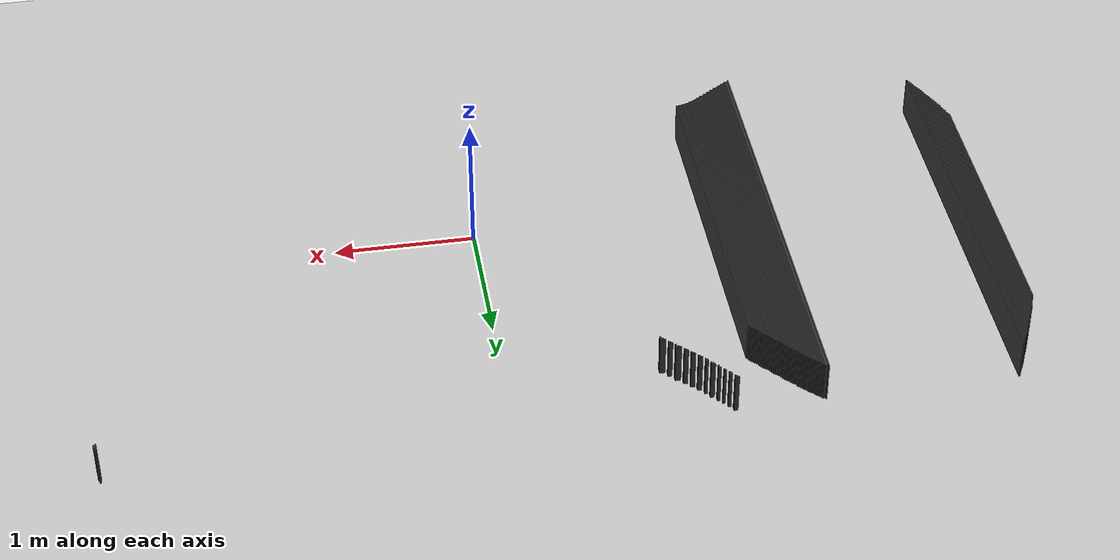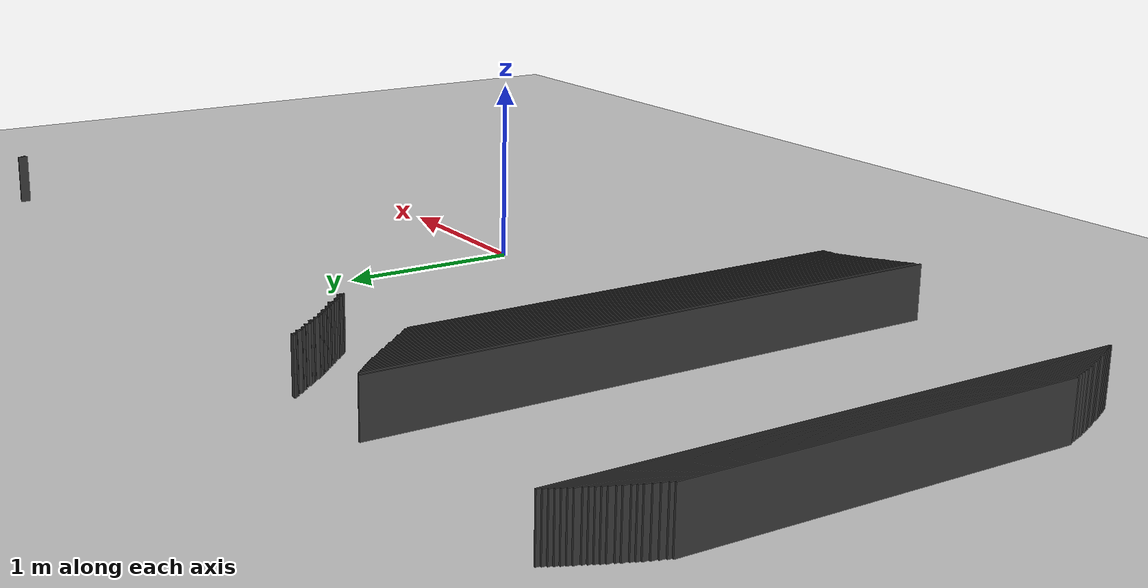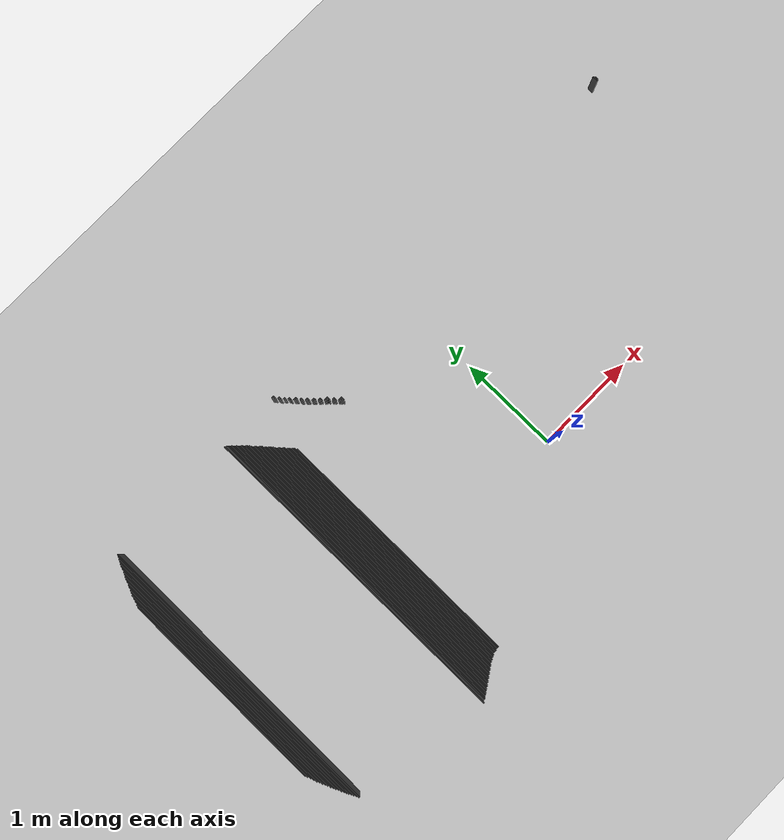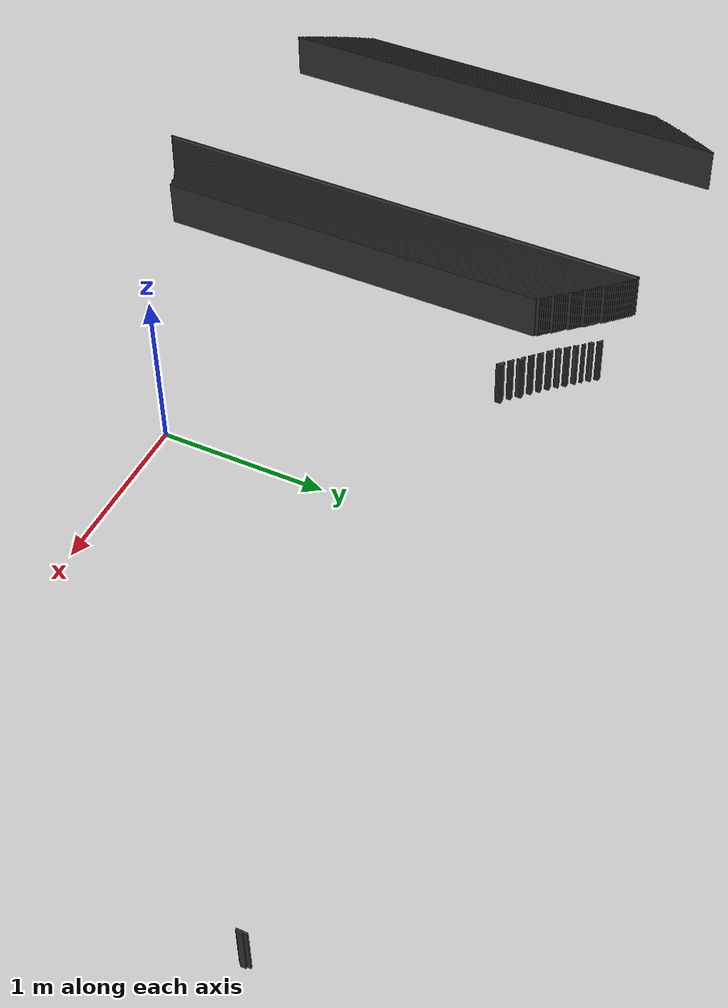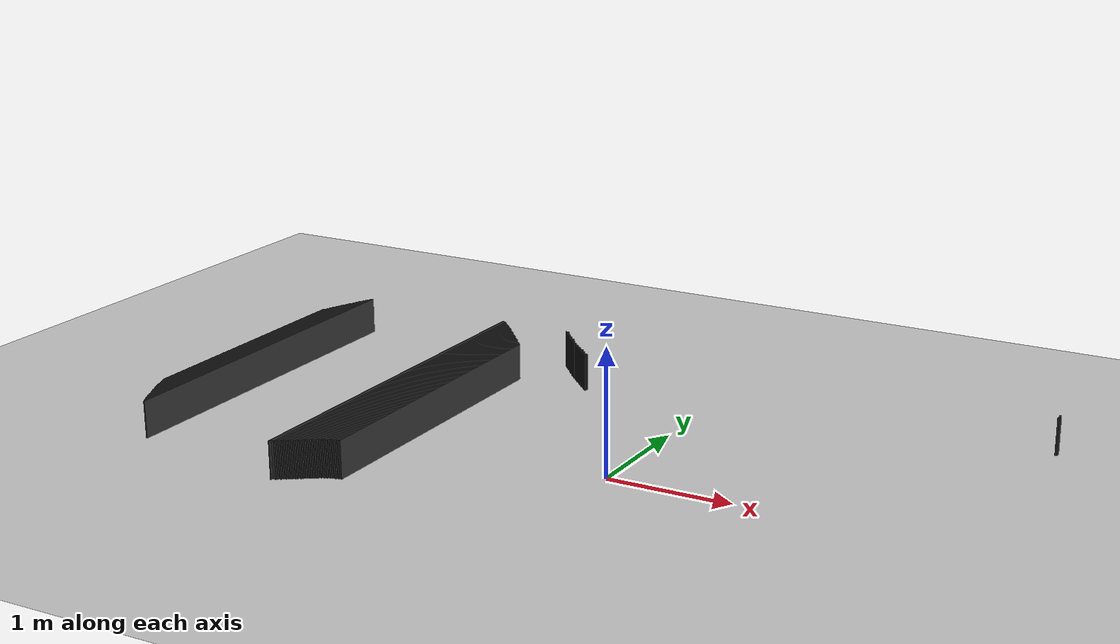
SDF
<sdf version="1.7">
 <world name="mapa_mundo">
  <model name="ground_plane">
   <static>true</static>
   <link name="link">
    <collision name="collision">
     <geometry><plane><normal>0 0 1</normal><size>10 10</size></plane></geometry>
     <surface><friction><ode><mu>100</mu><mu2>50</mu2></ode></friction></surface>
    </collision>
    <visual name="visual">
     <geometry><plane><normal>0 0 1</normal><size>10 10</size></plane></geometry>
     <material>
      <ambient>0.8 0.8 0.8 1</ambient>
      <diffuse>0.8 0.8 0.8 1</diffuse>
      <specular>0.8 0.8 0.8 1</specular>
     </material>
    </visual>
   </link>
  </model>
  <model name="wall_400">
   <static>true</static>
   <link name="link">
    <collision name="collision"><geometry><box><size>0.03 0.01 0.3</size></box></geometry></collision>
    <visual name="visual">
     <geometry><box><size>0.03 0.01 0.3</size></box></geometry>
     <material><ambient>0.2 0.2 0.2 1</ambient><diffuse>0.2 0.2 0.2 1</diffuse></material>
    </visual>
    <pose>-1.485 2.055 0.15 0 0 0</pose>
   </link>
  </model>
  <model name="wall_401">
   <static>true</static>
   <link name="link">
    <collision name="collision">
     <geometry><box><size>0.01 3.0100000000000002 0.3</size></box></geometry>
    </collision>
    <visual name="visual">
     <geometry><box><size>0.01 3.0100000000000002 0.3</size></box></geometry>
     <material><ambient>0.2 0.2 0.2 1</ambient><diffuse>0.2 0.2 0.2 1</diffuse></material>
    </visual>
    <pose>-3.4450000000000003 0.545 0.15 0 0 0</pose>
   </link>
  </model>
  <model name="wall_402">
   <static>true</static>
   <link name="link">
    <collision name="collision"><geometry><box><size>0.01 3.23 0.3</size></box></geometry></collision>
    <visual name="visual">
     <geometry><box><size>0.01 3.23 0.3</size></box></geometry>
     <material><ambient>0.2 0.2 0.2 1</ambient><diffuse>0.2 0.2 0.2 1</diffuse></material>
    </visual>
    <pose>-2.105 0.435 0.15 0 0 0</pose>
   </link>
  </model>
  <model name="wall_403">
   <static>true</static>
   <link name="link">
    <collision name="collision"><geometry><box><size>0.02 0.01 0.3</size></box></geometry></collision>
    <visual name="visual">
     <geometry><box><size>0.02 0.01 0.3</size></box></geometry>
     <material><ambient>0.2 0.2 0.2 1</ambient><diffuse>0.2 0.2 0.2 1</diffuse></material>
    </visual>
    <pose>-1.48 2.045 0.15 0 0 0</pose>
   </link>
  </model>
  <model name="wall_404">
   <static>true</static>
   <link name="link">
    <collision name="collision"><geometry><box><size>0.01 0.06 0.3</size></box></geometry></collision>
    <visual name="visual">
     <geometry><box><size>0.01 0.06 0.3</size></box></geometry>
     <material><ambient>0.2 0.2 0.2 1</ambient><diffuse>0.2 0.2 0.2 1</diffuse></material>
    </visual>
    <pose>2.705 2.02 0.15 0 0 0</pose>
   </link>
  </model>
  <model name="wall_405">
   <static>true</static>
   <link name="link">
    <collision name="collision"><geometry><box><size>0.02 3.2 0.3</size></box></geometry></collision>
    <visual name="visual">
     <geometry><box><size>0.02 3.2 0.3</size></box></geometry>
     <material><ambient>0.2 0.2 0.2 1</ambient><diffuse>0.2 0.2 0.2 1</diffuse></material>
    </visual>
    <pose>-2.09 0.44 0.15 0 0 0</pose>
   </link>
  </model>
  <model name="wall_406">
   <static>true</static>
   <link name="link">
    <collision name="collision"><geometry><box><size>0.01 0.01 0.3</size></box></geometry></collision>
    <visual name="visual">
     <geometry><box><size>0.01 0.01 0.3</size></box></geometry>
     <material><ambient>0.2 0.2 0.2 1</ambient><diffuse>0.2 0.2 0.2 1</diffuse></material>
    </visual>
    <pose>-1.475 2.035 0.15 0 0 0</pose>
   </link>
  </model>
  <model name="wall_407">
   <static>true</static>
   <link name="link">
    <collision name="collision"><geometry><box><size>0.01 2.97 0.3</size></box></geometry></collision>
    <visual name="visual">
     <geometry><box><size>0.01 2.97 0.3</size></box></geometry>
     <material><ambient>0.2 0.2 0.2 1</ambient><diffuse>0.2 0.2 0.2 1</diffuse></material>
    </visual>
    <pose>-3.455 0.545 0.15 0 0 0</pose>
   </link>
  </model>
  <model name="wall_408">
   <static>true</static>
   <link name="link">
    <collision name="collision"><geometry><box><size>0.01 3.19 0.3</size></box></geometry></collision>
    <visual name="visual">
     <geometry><box><size>0.01 3.19 0.3</size></box></geometry>
     <material><ambient>0.2 0.2 0.2 1</ambient><diffuse>0.2 0.2 0.2 1</diffuse></material>
    </visual>
    <pose>-2.075 0.435 0.15 0 0 0</pose>
   </link>
  </model>
  <model name="wall_409">
   <static>true</static>
   <link name="link">
    <collision name="collision"><geometry><box><size>0.01 0.03 0.3</size></box></geometry></collision>
    <visual name="visual">
     <geometry><box><size>0.01 0.03 0.3</size></box></geometry>
     <material><ambient>0.2 0.2 0.2 1</ambient><diffuse>0.2 0.2 0.2 1</diffuse></material>
    </visual>
    <pose>2.715 2.015 0.15 0 0 0</pose>
   </link>
  </model>
  <model name="wall_410">
   <static>true</static>
   <link name="link">
    <collision name="collision"><geometry><box><size>0.01 3.17 0.3</size></box></geometry></collision>
    <visual name="visual">
     <geometry><box><size>0.01 3.17 0.3</size></box></geometry>
     <material><ambient>0.2 0.2 0.2 1</ambient><diffuse>0.2 0.2 0.2 1</diffuse></material>
    </visual>
    <pose>-2.065 0.435 0.15 0 0 0</pose>
   </link>
  </model>
  <model name="wall_411">
   <static>true</static>
   <link name="link">
    <collision name="collision"><geometry><box><size>0.02 0.02 0.3</size></box></geometry></collision>
    <visual name="visual">
     <geometry><box><size>0.02 0.02 0.3</size></box></geometry>
     <material><ambient>0.2 0.2 0.2 1</ambient><diffuse>0.2 0.2 0.2 1</diffuse></material>
    </visual>
    <pose>-1.45 2.0100000000000002 0.15 0 0 0</pose>
   </link>
  </model>
  <model name="wall_412">
   <static>true</static>
   <link name="link">
    <collision name="collision"><geometry><box><size>0.01 2.93 0.3</size></box></geometry></collision>
    <visual name="visual">
     <geometry><box><size>0.01 2.93 0.3</size></box></geometry>
     <material><ambient>0.2 0.2 0.2 1</ambient><diffuse>0.2 0.2 0.2 1</diffuse></material>
    </visual>
    <pose>-3.465 0.545 0.15 0 0 0</pose>
   </link>
  </model>
  <model name="wall_413">
   <static>true</static>
   <link name="link">
    <collision name="collision"><geometry><box><size>0.01 3.15 0.3</size></box></geometry></collision>
    <visual name="visual">
     <geometry><box><size>0.01 3.15 0.3</size></box></geometry>
     <material><ambient>0.2 0.2 0.2 1</ambient><diffuse>0.2 0.2 0.2 1</diffuse></material>
    </visual>
    <pose>-2.055 0.435 0.15 0 0 0</pose>
   </link>
  </model>
  <model name="wall_414">
   <static>true</static>
   <link name="link">
    <collision name="collision"><geometry><box><size>0.01 3.14 0.3</size></box></geometry></collision>
    <visual name="visual">
     <geometry><box><size>0.01 3.14 0.3</size></box></geometry>
     <material><ambient>0.2 0.2 0.2 1</ambient><diffuse>0.2 0.2 0.2 1</diffuse></material>
    </visual>
    <pose>-2.045 0.43 0.15 0 0 0</pose>
   </link>
  </model>
  <model name="wall_415">
   <static>true</static>
   <link name="link">
    <collision name="collision"><geometry><box><size>0.01 0.01 0.3</size></box></geometry></collision>
    <visual name="visual">
     <geometry><box><size>0.01 0.01 0.3</size></box></geometry>
     <material><ambient>0.2 0.2 0.2 1</ambient><diffuse>0.2 0.2 0.2 1</diffuse></material>
    </visual>
    <pose>-1.445 1.995 0.15 0 0 0</pose>
   </link>
  </model>
  <model name="wall_416">
   <static>true</static>
   <link name="link">
    <collision name="collision"><geometry><box><size>0.01 2.89 0.3</size></box></geometry></collision>
    <visual name="visual">
     <geometry><box><size>0.01 2.89 0.3</size></box></geometry>
     <material><ambient>0.2 0.2 0.2 1</ambient><diffuse>0.2 0.2 0.2 1</diffuse></material>
    </visual>
    <pose>-3.475 0.545 0.15 0 0 0</pose>
   </link>
  </model>
  <model name="wall_417">
   <static>true</static>
   <link name="link">
    <collision name="collision"><geometry><box><size>0.01 3.12 0.3</size></box></geometry></collision>
    <visual name="visual">
     <geometry><box><size>0.01 3.12 0.3</size></box></geometry>
     <material><ambient>0.2 0.2 0.2 1</ambient><diffuse>0.2 0.2 0.2 1</diffuse></material>
    </visual>
    <pose>-2.035 0.43 0.15 0 0 0</pose>
   </link>
  </model>
  <model name="wall_418">
   <static>true</static>
   <link name="link">
    <collision name="collision"><geometry><box><size>0.01 3.1 0.3</size></box></geometry></collision>
    <visual name="visual">
     <geometry><box><size>0.01 3.1 0.3</size></box></geometry>
     <material><ambient>0.2 0.2 0.2 1</ambient><diffuse>0.2 0.2 0.2 1</diffuse></material>
    </visual>
    <pose>-2.025 0.43 0.15 0 0 0</pose>
   </link>
  </model>
  <model name="wall_419">
   <static>true</static>
   <link name="link">
    <collision name="collision"><geometry><box><size>0.02 0.01 0.3</size></box></geometry></collision>
    <visual name="visual">
     <geometry><box><size>0.02 0.01 0.3</size></box></geometry>
     <material><ambient>0.2 0.2 0.2 1</ambient><diffuse>0.2 0.2 0.2 1</diffuse></material>
    </visual>
    <pose>-1.42 1.975 0.15 0 0 0</pose>
   </link>
  </model>
  <model name="wall_420">
   <static>true</static>
   <link name="link">
    <collision name="collision"><geometry><box><size>0.01 2.85 0.3</size></box></geometry></collision>
    <visual name="visual">
     <geometry><box><size>0.01 2.85 0.3</size></box></geometry>
     <material><ambient>0.2 0.2 0.2 1</ambient><diffuse>0.2 0.2 0.2 1</diffuse></material>
    </visual>
    <pose>-3.485 0.545 0.15 0 0 0</pose>
   </link>
  </model>
  <model name="wall_421">
   <static>true</static>
   <link name="link">
    <collision name="collision"><geometry><box><size>0.01 3.09 0.3</size></box></geometry></collision>
    <visual name="visual">
     <geometry><box><size>0.01 3.09 0.3</size></box></geometry>
     <material><ambient>0.2 0.2 0.2 1</ambient><diffuse>0.2 0.2 0.2 1</diffuse></material>
    </visual>
    <pose>-2.015 0.425 0.15 0 0 0</pose>
   </link>
  </model>
  <model name="wall_422">
   <static>true</static>
   <link name="link">
    <collision name="collision"><geometry><box><size>0.01 0.01 0.3</size></box></geometry></collision>
    <visual name="visual">
     <geometry><box><size>0.01 0.01 0.3</size></box></geometry>
     <material><ambient>0.2 0.2 0.2 1</ambient><diffuse>0.2 0.2 0.2 1</diffuse></material>
    </visual>
    <pose>-1.415 1.965 0.15 0 0 0</pose>
   </link>
  </model>
  <model name="wall_423">
   <static>true</static>
   <link name="link">
    <collision name="collision">
     <geometry><box><size>0.01 3.0700000000000003 0.3</size></box></geometry>
    </collision>
    <visual name="visual">
     <geometry><box><size>0.01 3.0700000000000003 0.3</size></box></geometry>
     <material><ambient>0.2 0.2 0.2 1</ambient><diffuse>0.2 0.2 0.2 1</diffuse></material>
    </visual>
    <pose>-2.005 0.425 0.15 0 0 0</pose>
   </link>
  </model>
  <model name="wall_424">
   <static>true</static>
   <link name="link">
    <collision name="collision"><geometry><box><size>0.01 2.81 0.3</size></box></geometry></collision>
    <visual name="visual">
     <geometry><box><size>0.01 2.81 0.3</size></box></geometry>
     <material><ambient>0.2 0.2 0.2 1</ambient><diffuse>0.2 0.2 0.2 1</diffuse></material>
    </visual>
    <pose>-3.495 0.545 0.15 0 0 0</pose>
   </link>
  </model>
  <model name="wall_425">
   <static>true</static>
   <link name="link">
    <collision name="collision">
     <geometry><box><size>0.01 3.0500000000000003 0.3</size></box></geometry>
    </collision>
    <visual name="visual">
     <geometry><box><size>0.01 3.0500000000000003 0.3</size></box></geometry>
     <material><ambient>0.2 0.2 0.2 1</ambient><diffuse>0.2 0.2 0.2 1</diffuse></material>
    </visual>
    <pose>-1.995 0.425 0.15 0 0 0</pose>
   </link>
  </model>
  <model name="wall_426">
   <static>true</static>
   <link name="link">
    <collision name="collision"><geometry><box><size>0.02 0.01 0.3</size></box></geometry></collision>
    <visual name="visual">
     <geometry><box><size>0.02 0.01 0.3</size></box></geometry>
     <material><ambient>0.2 0.2 0.2 1</ambient><diffuse>0.2 0.2 0.2 1</diffuse></material>
    </visual>
    <pose>-1.3900000000000001 1.945 0.15 0 0 0</pose>
   </link>
  </model>
  <model name="wall_427">
   <static>true</static>
   <link name="link">
    <collision name="collision"><geometry><box><size>0.01 3.04 0.3</size></box></geometry></collision>
    <visual name="visual">
     <geometry><box><size>0.01 3.04 0.3</size></box></geometry>
     <material><ambient>0.2 0.2 0.2 1</ambient><diffuse>0.2 0.2 0.2 1</diffuse></material>
    </visual>
    <pose>-1.985 0.42 0.15 0 0 0</pose>
   </link>
  </model>
  <model name="wall_428">
   <static>true</static>
   <link name="link">
    <collision name="collision"><geometry><box><size>0.01 0.02 0.3</size></box></geometry></collision>
    <visual name="visual">
     <geometry><box><size>0.01 0.02 0.3</size></box></geometry>
     <material><ambient>0.2 0.2 0.2 1</ambient><diffuse>0.2 0.2 0.2 1</diffuse></material>
    </visual>
    <pose>-1.385 1.93 0.15 0 0 0</pose>
   </link>
  </model>
  <model name="wall_429">
   <static>true</static>
   <link name="link">
    <collision name="collision"><geometry><box><size>0.01 2.77 0.3</size></box></geometry></collision>
    <visual name="visual">
     <geometry><box><size>0.01 2.77 0.3</size></box></geometry>
     <material><ambient>0.2 0.2 0.2 1</ambient><diffuse>0.2 0.2 0.2 1</diffuse></material>
    </visual>
    <pose>-3.505 0.545 0.15 0 0 0</pose>
   </link>
  </model>
  <model name="wall_430">
   <static>true</static>
   <link name="link">
    <collision name="collision"><geometry><box><size>0.01 3.02 0.3</size></box></geometry></collision>
    <visual name="visual">
     <geometry><box><size>0.01 3.02 0.3</size></box></geometry>
     <material><ambient>0.2 0.2 0.2 1</ambient><diffuse>0.2 0.2 0.2 1</diffuse></material>
    </visual>
    <pose>-1.975 0.42 0.15 0 0 0</pose>
   </link>
  </model>
  <model name="wall_431">
   <static>true</static>
   <link name="link">
    <collision name="collision"><geometry><box><size>0.01 3.0 0.3</size></box></geometry></collision>
    <visual name="visual">
     <geometry><box><size>0.01 3.0 0.3</size></box></geometry>
     <material><ambient>0.2 0.2 0.2 1</ambient><diffuse>0.2 0.2 0.2 1</diffuse></material>
    </visual>
    <pose>-1.965 0.42 0.15 0 0 0</pose>
   </link>
  </model>
  <model name="wall_432">
   <static>true</static>
   <link name="link">
    <collision name="collision"><geometry><box><size>0.01 2.99 0.3</size></box></geometry></collision>
    <visual name="visual">
     <geometry><box><size>0.01 2.99 0.3</size></box></geometry>
     <material><ambient>0.2 0.2 0.2 1</ambient><diffuse>0.2 0.2 0.2 1</diffuse></material>
    </visual>
    <pose>-1.955 0.41500000000000004 0.15 0 0 0</pose>
   </link>
  </model>
  <model name="wall_433">
   <static>true</static>
   <link name="link">
    <collision name="collision"><geometry><box><size>0.03 0.01 0.3</size></box></geometry></collision>
    <visual name="visual">
     <geometry><box><size>0.03 0.01 0.3</size></box></geometry>
     <material><ambient>0.2 0.2 0.2 1</ambient><diffuse>0.2 0.2 0.2 1</diffuse></material>
    </visual>
    <pose>-1.355 1.905 0.15 0 0 0</pose>
   </link>
  </model>
  <model name="wall_434">
   <static>true</static>
   <link name="link">
    <collision name="collision"><geometry><box><size>0.01 2.72 0.3</size></box></geometry></collision>
    <visual name="visual">
     <geometry><box><size>0.01 2.72 0.3</size></box></geometry>
     <material><ambient>0.2 0.2 0.2 1</ambient><diffuse>0.2 0.2 0.2 1</diffuse></material>
    </visual>
    <pose>-3.515 0.54 0.15 0 0 0</pose>
   </link>
  </model>
  <model name="wall_435">
   <static>true</static>
   <link name="link">
    <collision name="collision"><geometry><box><size>0.01 2.97 0.3</size></box></geometry></collision>
    <visual name="visual">
     <geometry><box><size>0.01 2.97 0.3</size></box></geometry>
     <material><ambient>0.2 0.2 0.2 1</ambient><diffuse>0.2 0.2 0.2 1</diffuse></material>
    </visual>
    <pose>-1.945 0.41500000000000004 0.15 0 0 0</pose>
   </link>
  </model>
  <model name="wall_436">
   <static>true</static>
   <link name="link">
    <collision name="collision"><geometry><box><size>0.02 0.01 0.3</size></box></geometry></collision>
    <visual name="visual">
     <geometry><box><size>0.02 0.01 0.3</size></box></geometry>
     <material><ambient>0.2 0.2 0.2 1</ambient><diffuse>0.2 0.2 0.2 1</diffuse></material>
    </visual>
    <pose>-1.35 1.895 0.15 0 0 0</pose>
   </link>
  </model>
  <model name="wall_437">
   <static>true</static>
   <link name="link">
    <collision name="collision"><geometry><box><size>0.01 0.01 0.3</size></box></geometry></collision>
    <visual name="visual">
     <geometry><box><size>0.01 0.01 0.3</size></box></geometry>
     <material><ambient>0.2 0.2 0.2 1</ambient><diffuse>0.2 0.2 0.2 1</diffuse></material>
    </visual>
    <pose>-1.345 1.885 0.15 0 0 0</pose>
   </link>
  </model>
  <model name="wall_438">
   <static>true</static>
   <link name="link">
    <collision name="collision"><geometry><box><size>0.01 2.67 0.3</size></box></geometry></collision>
    <visual name="visual">
     <geometry><box><size>0.01 2.67 0.3</size></box></geometry>
     <material><ambient>0.2 0.2 0.2 1</ambient><diffuse>0.2 0.2 0.2 1</diffuse></material>
    </visual>
    <pose>-3.525 0.545 0.15 0 0 0</pose>
   </link>
  </model>
  <model name="wall_439">
   <static>true</static>
   <link name="link">
    <collision name="collision"><geometry><box><size>0.01 2.94 0.3</size></box></geometry></collision>
    <visual name="visual">
     <geometry><box><size>0.01 2.94 0.3</size></box></geometry>
     <material><ambient>0.2 0.2 0.2 1</ambient><diffuse>0.2 0.2 0.2 1</diffuse></material>
    </visual>
    <pose>-1.935 0.41000000000000003 0.15 0 0 0</pose>
   </link>
  </model>
  <model name="wall_440">
   <static>true</static>
   <link name="link">
    <collision name="collision"><geometry><box><size>0.01 2.93 0.3</size></box></geometry></collision>
    <visual name="visual">
     <geometry><box><size>0.01 2.93 0.3</size></box></geometry>
     <material><ambient>0.2 0.2 0.2 1</ambient><diffuse>0.2 0.2 0.2 1</diffuse></material>
    </visual>
    <pose>-1.925 0.405 0.15 0 0 0</pose>
   </link>
  </model>
  <model name="wall_441">
   <static>true</static>
   <link name="link">
    <collision name="collision"><geometry><box><size>0.02 0.02 0.3</size></box></geometry></collision>
    <visual name="visual">
     <geometry><box><size>0.02 0.02 0.3</size></box></geometry>
     <material><ambient>0.2 0.2 0.2 1</ambient><diffuse>0.2 0.2 0.2 1</diffuse></material>
    </visual>
    <pose>-1.32 1.86 0.15 0 0 0</pose>
   </link>
  </model>
  <model name="wall_442">
   <static>true</static>
   <link name="link">
    <collision name="collision"><geometry><box><size>0.01 2.63 0.3</size></box></geometry></collision>
    <visual name="visual">
     <geometry><box><size>0.01 2.63 0.3</size></box></geometry>
     <material><ambient>0.2 0.2 0.2 1</ambient><diffuse>0.2 0.2 0.2 1</diffuse></material>
    </visual>
    <pose>-3.535 0.545 0.15 0 0 0</pose>
   </link>
  </model>
  <model name="wall_443">
   <static>true</static>
   <link name="link">
    <collision name="collision"><geometry><box><size>0.01 2.91 0.3</size></box></geometry></collision>
    <visual name="visual">
     <geometry><box><size>0.01 2.91 0.3</size></box></geometry>
     <material><ambient>0.2 0.2 0.2 1</ambient><diffuse>0.2 0.2 0.2 1</diffuse></material>
    </visual>
    <pose>-1.915 0.405 0.15 0 0 0</pose>
   </link>
  </model>
  <model name="wall_444">
   <static>true</static>
   <link name="link">
    <collision name="collision"><geometry><box><size>0.01 2.89 0.3</size></box></geometry></collision>
    <visual name="visual">
     <geometry><box><size>0.01 2.89 0.3</size></box></geometry>
     <material><ambient>0.2 0.2 0.2 1</ambient><diffuse>0.2 0.2 0.2 1</diffuse></material>
    </visual>
    <pose>-1.905 0.405 0.15 0 0 0</pose>
   </link>
  </model>
  <model name="wall_445">
   <static>true</static>
   <link name="link">
    <collision name="collision"><geometry><box><size>0.01 0.01 0.3</size></box></geometry></collision>
    <visual name="visual">
     <geometry><box><size>0.01 0.01 0.3</size></box></geometry>
     <material><ambient>0.2 0.2 0.2 1</ambient><diffuse>0.2 0.2 0.2 1</diffuse></material>
    </visual>
    <pose>-1.315 1.845 0.15 0 0 0</pose>
   </link>
  </model>
  <model name="wall_446">
   <static>true</static>
   <link name="link">
    <collision name="collision"><geometry><box><size>0.01 2.59 0.3</size></box></geometry></collision>
    <visual name="visual">
     <geometry><box><size>0.01 2.59 0.3</size></box></geometry>
     <material><ambient>0.2 0.2 0.2 1</ambient><diffuse>0.2 0.2 0.2 1</diffuse></material>
    </visual>
    <pose>-3.545 0.545 0.15 0 0 0</pose>
   </link>
  </model>
  <model name="wall_447">
   <static>true</static>
   <link name="link">
    <collision name="collision"><geometry><box><size>0.01 2.88 0.3</size></box></geometry></collision>
    <visual name="visual">
     <geometry><box><size>0.01 2.88 0.3</size></box></geometry>
     <material><ambient>0.2 0.2 0.2 1</ambient><diffuse>0.2 0.2 0.2 1</diffuse></material>
    </visual>
    <pose>-1.895 0.4 0.15 0 0 0</pose>
   </link>
  </model>
  <model name="wall_448">
   <static>true</static>
   <link name="link">
    <collision name="collision"><geometry><box><size>0.01 2.86 0.3</size></box></geometry></collision>
    <visual name="visual">
     <geometry><box><size>0.01 2.86 0.3</size></box></geometry>
     <material><ambient>0.2 0.2 0.2 1</ambient><diffuse>0.2 0.2 0.2 1</diffuse></material>
    </visual>
    <pose>-1.885 0.4 0.15 0 0 0</pose>
   </link>
  </model>
  <model name="wall_449">
   <static>true</static>
   <link name="link">
    <collision name="collision"><geometry><box><size>0.03 0.01 0.3</size></box></geometry></collision>
    <visual name="visual">
     <geometry><box><size>0.03 0.01 0.3</size></box></geometry>
     <material><ambient>0.2 0.2 0.2 1</ambient><diffuse>0.2 0.2 0.2 1</diffuse></material>
    </visual>
    <pose>-1.285 1.825 0.15 0 0 0</pose>
   </link>
  </model>
  <model name="wall_450">
   <static>true</static>
   <link name="link">
    <collision name="collision">
     <geometry><box><size>0.01 2.5500000000000003 0.3</size></box></geometry>
    </collision>
    <visual name="visual">
     <geometry><box><size>0.01 2.5500000000000003 0.3</size></box></geometry>
     <material><ambient>0.2 0.2 0.2 1</ambient><diffuse>0.2 0.2 0.2 1</diffuse></material>
    </visual>
    <pose>-3.555 0.545 0.15 0 0 0</pose>
   </link>
  </model>
  <model name="wall_451">
   <static>true</static>
   <link name="link">
    <collision name="collision"><geometry><box><size>0.01 2.84 0.3</size></box></geometry></collision>
    <visual name="visual">
     <geometry><box><size>0.01 2.84 0.3</size></box></geometry>
     <material><ambient>0.2 0.2 0.2 1</ambient><diffuse>0.2 0.2 0.2 1</diffuse></material>
    </visual>
    <pose>-1.875 0.4 0.15 0 0 0</pose>
   </link>
  </model>
  <model name="wall_452">
   <static>true</static>
   <link name="link">
    <collision name="collision"><geometry><box><size>0.02 0.01 0.3</size></box></geometry></collision>
    <visual name="visual">
     <geometry><box><size>0.02 0.01 0.3</size></box></geometry>
     <material><ambient>0.2 0.2 0.2 1</ambient><diffuse>0.2 0.2 0.2 1</diffuse></material>
    </visual>
    <pose>-1.28 1.815 0.15 0 0 0</pose>
   </link>
  </model>
  <model name="wall_453">
   <static>true</static>
   <link name="link">
    <collision name="collision"><geometry><box><size>0.01 2.83 0.3</size></box></geometry></collision>
    <visual name="visual">
     <geometry><box><size>0.01 2.83 0.3</size></box></geometry>
     <material><ambient>0.2 0.2 0.2 1</ambient><diffuse>0.2 0.2 0.2 1</diffuse></material>
    </visual>
    <pose>-1.865 0.395 0.15 0 0 0</pose>
   </link>
  </model>
  <model name="wall_454">
   <static>true</static>
   <link name="link">
    <collision name="collision"><geometry><box><size>0.01 0.01 0.3</size></box></geometry></collision>
    <visual name="visual">
     <geometry><box><size>0.01 0.01 0.3</size></box></geometry>
     <material><ambient>0.2 0.2 0.2 1</ambient><diffuse>0.2 0.2 0.2 1</diffuse></material>
    </visual>
    <pose>-1.2750000000000001 1.805 0.15 0 0 0</pose>
   </link>
  </model>
  <model name="wall_455">
   <static>true</static>
   <link name="link">
    <collision name="collision"><geometry><box><size>0.01 2.49 0.3</size></box></geometry></collision>
    <visual name="visual">
     <geometry><box><size>0.01 2.49 0.3</size></box></geometry>
     <material><ambient>0.2 0.2 0.2 1</ambient><diffuse>0.2 0.2 0.2 1</diffuse></material>
    </visual>
    <pose>-3.565 0.545 0.15 0 0 0</pose>
   </link>
  </model>
  <model name="wall_456">
   <static>true</static>
   <link name="link">
    <collision name="collision">
     <geometry><box><size>0.01 2.8000000000000003 0.3</size></box></geometry>
    </collision>
    <visual name="visual">
     <geometry><box><size>0.01 2.8000000000000003 0.3</size></box></geometry>
     <material><ambient>0.2 0.2 0.2 1</ambient><diffuse>0.2 0.2 0.2 1</diffuse></material>
    </visual>
    <pose>-1.855 0.39 0.15 0 0 0</pose>
   </link>
  </model>
  <model name="wall_457">
   <static>true</static>
   <link name="link">
    <collision name="collision"><geometry><box><size>0.03 0.01 0.3</size></box></geometry></collision>
    <visual name="visual">
     <geometry><box><size>0.03 0.01 0.3</size></box></geometry>
     <material><ambient>0.2 0.2 0.2 1</ambient><diffuse>0.2 0.2 0.2 1</diffuse></material>
    </visual>
    <pose>-1.245 1.7850000000000001 0.15 0 0 0</pose>
   </link>
  </model>
  <model name="wall_458">
   <static>true</static>
   <link name="link">
    <collision name="collision">
     <geometry><box><size>0.01 2.7800000000000002 0.3</size></box></geometry>
    </collision>
    <visual name="visual">
     <geometry><box><size>0.01 2.7800000000000002 0.3</size></box></geometry>
     <material><ambient>0.2 0.2 0.2 1</ambient><diffuse>0.2 0.2 0.2 1</diffuse></material>
    </visual>
    <pose>-1.845 0.39 0.15 0 0 0</pose>
   </link>
  </model>
  <model name="wall_459">
   <static>true</static>
   <link name="link">
    <collision name="collision"><geometry><box><size>0.02 0.01 0.3</size></box></geometry></collision>
    <visual name="visual">
     <geometry><box><size>0.02 0.01 0.3</size></box></geometry>
     <material><ambient>0.2 0.2 0.2 1</ambient><diffuse>0.2 0.2 0.2 1</diffuse></material>
    </visual>
    <pose>-1.24 1.7750000000000001 0.15 0 0 0</pose>
   </link>
  </model>
  <model name="wall_460">
   <static>true</static>
   <link name="link">
    <collision name="collision"><geometry><box><size>0.01 2.45 0.3</size></box></geometry></collision>
    <visual name="visual">
     <geometry><box><size>0.01 2.45 0.3</size></box></geometry>
     <material><ambient>0.2 0.2 0.2 1</ambient><diffuse>0.2 0.2 0.2 1</diffuse></material>
    </visual>
    <pose>-3.575 0.545 0.15 0 0 0</pose>
   </link>
  </model>
  <model name="wall_461">
   <static>true</static>
   <link name="link">
    <collision name="collision"><geometry><box><size>0.01 2.77 0.3</size></box></geometry></collision>
    <visual name="visual">
     <geometry><box><size>0.01 2.77 0.3</size></box></geometry>
     <material><ambient>0.2 0.2 0.2 1</ambient><diffuse>0.2 0.2 0.2 1</diffuse></material>
    </visual>
    <pose>-1.835 0.385 0.15 0 0 0</pose>
   </link>
  </model>
  <model name="wall_462">
   <static>true</static>
   <link name="link">
    <collision name="collision"><geometry><box><size>0.01 0.01 0.3</size></box></geometry></collision>
    <visual name="visual">
     <geometry><box><size>0.01 0.01 0.3</size></box></geometry>
     <material><ambient>0.2 0.2 0.2 1</ambient><diffuse>0.2 0.2 0.2 1</diffuse></material>
    </visual>
    <pose>-1.235 1.7650000000000001 0.15 0 0 0</pose>
   </link>
  </model>
  <model name="wall_463">
   <static>true</static>
   <link name="link">
    <collision name="collision"><geometry><box><size>0.01 2.75 0.3</size></box></geometry></collision>
    <visual name="visual">
     <geometry><box><size>0.01 2.75 0.3</size></box></geometry>
     <material><ambient>0.2 0.2 0.2 1</ambient><diffuse>0.2 0.2 0.2 1</diffuse></material>
    </visual>
    <pose>-1.825 0.385 0.15 0 0 0</pose>
   </link>
  </model>
  <model name="wall_464">
   <static>true</static>
   <link name="link">
    <collision name="collision"><geometry><box><size>0.01 2.73 0.3</size></box></geometry></collision>
    <visual name="visual">
     <geometry><box><size>0.01 2.73 0.3</size></box></geometry>
     <material><ambient>0.2 0.2 0.2 1</ambient><diffuse>0.2 0.2 0.2 1</diffuse></material>
    </visual>
    <pose>-1.815 0.385 0.15 0 0 0</pose>
   </link>
  </model>
  <model name="wall_465">
   <static>true</static>
   <link name="link">
    <collision name="collision"><geometry><box><size>0.03 0.01 0.3</size></box></geometry></collision>
    <visual name="visual">
     <geometry><box><size>0.03 0.01 0.3</size></box></geometry>
     <material><ambient>0.2 0.2 0.2 1</ambient><diffuse>0.2 0.2 0.2 1</diffuse></material>
    </visual>
    <pose>-1.205 1.745 0.15 0 0 0</pose>
   </link>
  </model>
  <model name="wall_466">
   <static>true</static>
   <link name="link">
    <collision name="collision"><geometry><box><size>0.01 2.4 0.3</size></box></geometry></collision>
    <visual name="visual">
     <geometry><box><size>0.01 2.4 0.3</size></box></geometry>
     <material><ambient>0.2 0.2 0.2 1</ambient><diffuse>0.2 0.2 0.2 1</diffuse></material>
    </visual>
    <pose>-3.585 0.54 0.15 0 0 0</pose>
   </link>
  </model>
  <model name="wall_467">
   <static>true</static>
   <link name="link">
    <collision name="collision"><geometry><box><size>0.01 2.72 0.3</size></box></geometry></collision>
    <visual name="visual">
     <geometry><box><size>0.01 2.72 0.3</size></box></geometry>
     <material><ambient>0.2 0.2 0.2 1</ambient><diffuse>0.2 0.2 0.2 1</diffuse></material>
    </visual>
    <pose>-1.805 0.38 0.15 0 0 0</pose>
   </link>
  </model>
  <model name="wall_468">
   <static>true</static>
   <link name="link">
    <collision name="collision"><geometry><box><size>0.02 0.01 0.3</size></box></geometry></collision>
    <visual name="visual">
     <geometry><box><size>0.02 0.01 0.3</size></box></geometry>
     <material><ambient>0.2 0.2 0.2 1</ambient><diffuse>0.2 0.2 0.2 1</diffuse></material>
    </visual>
    <pose>-1.2 1.735 0.15 0 0 0</pose>
   </link>
  </model>
  <model name="wall_469">
   <static>true</static>
   <link name="link">
    <collision name="collision"><geometry><box><size>0.01 0.01 0.3</size></box></geometry></collision>
    <visual name="visual">
     <geometry><box><size>0.01 0.01 0.3</size></box></geometry>
     <material><ambient>0.2 0.2 0.2 1</ambient><diffuse>0.2 0.2 0.2 1</diffuse></material>
    </visual>
    <pose>-1.195 1.725 0.15 0 0 0</pose>
   </link>
  </model>
  <model name="wall_470">
   <static>true</static>
   <link name="link">
    <collision name="collision"><geometry><box><size>0.01 2.35 0.3</size></box></geometry></collision>
    <visual name="visual">
     <geometry><box><size>0.01 2.35 0.3</size></box></geometry>
     <material><ambient>0.2 0.2 0.2 1</ambient><diffuse>0.2 0.2 0.2 1</diffuse></material>
    </visual>
    <pose>-3.595 0.545 0.15 0 0 0</pose>
   </link>
  </model>
  <model name="wall_471">
   <static>true</static>
   <link name="link">
    <collision name="collision"><geometry><box><size>0.01 2.69 0.3</size></box></geometry></collision>
    <visual name="visual">
     <geometry><box><size>0.01 2.69 0.3</size></box></geometry>
     <material><ambient>0.2 0.2 0.2 1</ambient><diffuse>0.2 0.2 0.2 1</diffuse></material>
    </visual>
    <pose>-1.795 0.375 0.15 0 0 0</pose>
   </link>
  </model>
  <model name="wall_472">
   <static>true</static>
   <link name="link">
    <collision name="collision"><geometry><box><size>0.01 2.68 0.3</size></box></geometry></collision>
    <visual name="visual">
     <geometry><box><size>0.01 2.68 0.3</size></box></geometry>
     <material><ambient>0.2 0.2 0.2 1</ambient><diffuse>0.2 0.2 0.2 1</diffuse></material>
    </visual>
    <pose>-1.7850000000000001 0.37 0.15 0 0 0</pose>
   </link>
  </model>
  <model name="wall_473">
   <static>true</static>
   <link name="link">
    <collision name="collision"><geometry><box><size>0.04 0.01 0.3</size></box></geometry></collision>
    <visual name="visual">
     <geometry><box><size>0.04 0.01 0.3</size></box></geometry>
     <material><ambient>0.2 0.2 0.2 1</ambient><diffuse>0.2 0.2 0.2 1</diffuse></material>
    </visual>
    <pose>-1.16 1.705 0.15 0 0 0</pose>
   </link>
  </model>
  <model name="wall_474">
   <static>true</static>
   <link name="link">
    <collision name="collision"><geometry><box><size>0.01 2.31 0.3</size></box></geometry></collision>
    <visual name="visual">
     <geometry><box><size>0.01 2.31 0.3</size></box></geometry>
     <material><ambient>0.2 0.2 0.2 1</ambient><diffuse>0.2 0.2 0.2 1</diffuse></material>
    </visual>
    <pose>-3.605 0.545 0.15 0 0 0</pose>
   </link>
  </model>
  <model name="wall_475">
   <static>true</static>
   <link name="link">
    <collision name="collision"><geometry><box><size>0.01 2.66 0.3</size></box></geometry></collision>
    <visual name="visual">
     <geometry><box><size>0.01 2.66 0.3</size></box></geometry>
     <material><ambient>0.2 0.2 0.2 1</ambient><diffuse>0.2 0.2 0.2 1</diffuse></material>
    </visual>
    <pose>-1.7750000000000001 0.37 0.15 0 0 0</pose>
   </link>
  </model>
  <model name="wall_476">
   <static>true</static>
   <link name="link">
    <collision name="collision"><geometry><box><size>0.03 0.01 0.3</size></box></geometry></collision>
    <visual name="visual">
     <geometry><box><size>0.03 0.01 0.3</size></box></geometry>
     <material><ambient>0.2 0.2 0.2 1</ambient><diffuse>0.2 0.2 0.2 1</diffuse></material>
    </visual>
    <pose>-1.155 1.695 0.15 0 0 0</pose>
   </link>
  </model>
  <model name="wall_477">
   <static>true</static>
   <link name="link">
    <collision name="collision"><geometry><box><size>0.01 2.65 0.3</size></box></geometry></collision>
    <visual name="visual">
     <geometry><box><size>0.01 2.65 0.3</size></box></geometry>
     <material><ambient>0.2 0.2 0.2 1</ambient><diffuse>0.2 0.2 0.2 1</diffuse></material>
    </visual>
    <pose>-1.7650000000000001 0.365 0.15 0 0 0</pose>
   </link>
  </model>
  <model name="wall_478">
   <static>true</static>
   <link name="link">
    <collision name="collision"><geometry><box><size>0.01 0.02 0.3</size></box></geometry></collision>
    <visual name="visual">
     <geometry><box><size>0.01 0.02 0.3</size></box></geometry>
     <material><ambient>0.2 0.2 0.2 1</ambient><diffuse>0.2 0.2 0.2 1</diffuse></material>
    </visual>
    <pose>-1.145 1.68 0.15 0 0 0</pose>
   </link>
  </model>
  <model name="wall_479">
   <static>true</static>
   <link name="link">
    <collision name="collision"><geometry><box><size>0.01 2.63 0.3</size></box></geometry></collision>
    <visual name="visual">
     <geometry><box><size>0.01 2.63 0.3</size></box></geometry>
     <material><ambient>0.2 0.2 0.2 1</ambient><diffuse>0.2 0.2 0.2 1</diffuse></material>
    </visual>
    <pose>-1.7550000000000001 0.365 0.15 0 0 0</pose>
   </link>
  </model>
  <model name="wall_480">
   <static>true</static>
   <link name="link">
    <collision name="collision"><geometry><box><size>0.01 2.25 0.3</size></box></geometry></collision>
    <visual name="visual">
     <geometry><box><size>0.01 2.25 0.3</size></box></geometry>
     <material><ambient>0.2 0.2 0.2 1</ambient><diffuse>0.2 0.2 0.2 1</diffuse></material>
    </visual>
    <pose>-3.615 0.545 0.15 0 0 0</pose>
   </link>
  </model>
  <model name="wall_481">
   <static>true</static>
   <link name="link">
    <collision name="collision"><geometry><box><size>0.01 2.62 0.3</size></box></geometry></collision>
    <visual name="visual">
     <geometry><box><size>0.01 2.62 0.3</size></box></geometry>
     <material><ambient>0.2 0.2 0.2 1</ambient><diffuse>0.2 0.2 0.2 1</diffuse></material>
    </visual>
    <pose>-1.745 0.36 0.15 0 0 0</pose>
   </link>
  </model>
  <model name="wall_482">
   <static>true</static>
   <link name="link">
    <collision name="collision"><geometry><box><size>0.01 2.6 0.3</size></box></geometry></collision>
    <visual name="visual">
     <geometry><box><size>0.01 2.6 0.3</size></box></geometry>
     <material><ambient>0.2 0.2 0.2 1</ambient><diffuse>0.2 0.2 0.2 1</diffuse></material>
    </visual>
    <pose>-1.735 0.36 0.15 0 0 0</pose>
   </link>
  </model>
  <model name="wall_483">
   <static>true</static>
   <link name="link">
    <collision name="collision"><geometry><box><size>0.03 0.01 0.3</size></box></geometry></collision>
    <visual name="visual">
     <geometry><box><size>0.03 0.01 0.3</size></box></geometry>
     <material><ambient>0.2 0.2 0.2 1</ambient><diffuse>0.2 0.2 0.2 1</diffuse></material>
    </visual>
    <pose>-1.115 1.655 0.15 0 0 0</pose>
   </link>
  </model>
  <model name="wall_484">
   <static>true</static>
   <link name="link">
    <collision name="collision"><geometry><box><size>0.02 0.01 0.3</size></box></geometry></collision>
    <visual name="visual">
     <geometry><box><size>0.02 0.01 0.3</size></box></geometry>
     <material><ambient>0.2 0.2 0.2 1</ambient><diffuse>0.2 0.2 0.2 1</diffuse></material>
    </visual>
    <pose>-1.11 1.645 0.15 0 0 0</pose>
   </link>
  </model>
  <model name="wall_485">
   <static>true</static>
   <link name="link">
    <collision name="collision"><geometry><box><size>0.01 2.19 0.3</size></box></geometry></collision>
    <visual name="visual">
     <geometry><box><size>0.01 2.19 0.3</size></box></geometry>
     <material><ambient>0.2 0.2 0.2 1</ambient><diffuse>0.2 0.2 0.2 1</diffuse></material>
    </visual>
    <pose>-3.625 0.545 0.15 0 0 0</pose>
   </link>
  </model>
  <model name="wall_486">
   <static>true</static>
   <link name="link">
    <collision name="collision"><geometry><box><size>0.01 2.58 0.3</size></box></geometry></collision>
    <visual name="visual">
     <geometry><box><size>0.01 2.58 0.3</size></box></geometry>
     <material><ambient>0.2 0.2 0.2 1</ambient><diffuse>0.2 0.2 0.2 1</diffuse></material>
    </visual>
    <pose>-1.725 0.35000000000000003 0.15 0 0 0</pose>
   </link>
  </model>
  <model name="wall_487">
   <static>true</static>
   <link name="link">
    <collision name="collision"><geometry><box><size>0.01 0.01 0.3</size></box></geometry></collision>
    <visual name="visual">
     <geometry><box><size>0.01 0.01 0.3</size></box></geometry>
     <material><ambient>0.2 0.2 0.2 1</ambient><diffuse>0.2 0.2 0.2 1</diffuse></material>
    </visual>
    <pose>-1.105 1.635 0.15 0 0 0</pose>
   </link>
  </model>
  <model name="wall_488">
   <static>true</static>
   <link name="link">
    <collision name="collision"><geometry><box><size>0.01 2.57 0.3</size></box></geometry></collision>
    <visual name="visual">
     <geometry><box><size>0.01 2.57 0.3</size></box></geometry>
     <material><ambient>0.2 0.2 0.2 1</ambient><diffuse>0.2 0.2 0.2 1</diffuse></material>
    </visual>
    <pose>-1.715 0.34500000000000003 0.15 0 0 0</pose>
   </link>
  </model>
  <model name="wall_489">
   <static>true</static>
   <link name="link">
    <collision name="collision"><geometry><box><size>0.01 2.56 0.3</size></box></geometry></collision>
    <visual name="visual">
     <geometry><box><size>0.01 2.56 0.3</size></box></geometry>
     <material><ambient>0.2 0.2 0.2 1</ambient><diffuse>0.2 0.2 0.2 1</diffuse></material>
    </visual>
    <pose>-1.705 0.34 0.15 0 0 0</pose>
   </link>
  </model>
  <model name="wall_490">
   <static>true</static>
   <link name="link">
    <collision name="collision"><geometry><box><size>0.04 0.01 0.3</size></box></geometry></collision>
    <visual name="visual">
     <geometry><box><size>0.04 0.01 0.3</size></box></geometry>
     <material><ambient>0.2 0.2 0.2 1</ambient><diffuse>0.2 0.2 0.2 1</diffuse></material>
    </visual>
    <pose>-1.07 1.615 0.15 0 0 0</pose>
   </link>
  </model>
  <model name="wall_491">
   <static>true</static>
   <link name="link">
    <collision name="collision"><geometry><box><size>0.01 2.13 0.3</size></box></geometry></collision>
    <visual name="visual">
     <geometry><box><size>0.01 2.13 0.3</size></box></geometry>
     <material><ambient>0.2 0.2 0.2 1</ambient><diffuse>0.2 0.2 0.2 1</diffuse></material>
    </visual>
    <pose>-3.6350000000000002 0.545 0.15 0 0 0</pose>
   </link>
  </model>
  <model name="wall_492">
   <static>true</static>
   <link name="link">
    <collision name="collision"><geometry><box><size>0.01 2.54 0.3</size></box></geometry></collision>
    <visual name="visual">
     <geometry><box><size>0.01 2.54 0.3</size></box></geometry>
     <material><ambient>0.2 0.2 0.2 1</ambient><diffuse>0.2 0.2 0.2 1</diffuse></material>
    </visual>
    <pose>-1.695 0.34 0.15 0 0 0</pose>
   </link>
  </model>
  <model name="wall_493">
   <static>true</static>
   <link name="link">
    <collision name="collision"><geometry><box><size>0.03 0.01 0.3</size></box></geometry></collision>
    <visual name="visual">
     <geometry><box><size>0.03 0.01 0.3</size></box></geometry>
     <material><ambient>0.2 0.2 0.2 1</ambient><diffuse>0.2 0.2 0.2 1</diffuse></material>
    </visual>
    <pose>-1.065 1.605 0.15 0 0 0</pose>
   </link>
  </model>
  <model name="wall_494">
   <static>true</static>
   <link name="link">
    <collision name="collision">
     <geometry><box><size>0.01 2.5300000000000002 0.3</size></box></geometry>
    </collision>
    <visual name="visual">
     <geometry><box><size>0.01 2.5300000000000002 0.3</size></box></geometry>
     <material><ambient>0.2 0.2 0.2 1</ambient><diffuse>0.2 0.2 0.2 1</diffuse></material>
    </visual>
    <pose>-1.685 0.335 0.15 0 0 0</pose>
   </link>
  </model>
  <model name="wall_495">
   <static>true</static>
   <link name="link">
    <collision name="collision"><geometry><box><size>0.02 0.01 0.3</size></box></geometry></collision>
    <visual name="visual">
     <geometry><box><size>0.02 0.01 0.3</size></box></geometry>
     <material><ambient>0.2 0.2 0.2 1</ambient><diffuse>0.2 0.2 0.2 1</diffuse></material>
    </visual>
    <pose>-1.06 1.595 0.15 0 0 0</pose>
   </link>
  </model>
  <model name="wall_496">
   <static>true</static>
   <link name="link">
    <collision name="collision"><geometry><box><size>0.01 2.09 0.3</size></box></geometry></collision>
    <visual name="visual">
     <geometry><box><size>0.01 2.09 0.3</size></box></geometry>
     <material><ambient>0.2 0.2 0.2 1</ambient><diffuse>0.2 0.2 0.2 1</diffuse></material>
    </visual>
    <pose>-3.645 0.545 0.15 0 0 0</pose>
   </link>
  </model>
  <model name="wall_497">
   <static>true</static>
   <link name="link">
    <collision name="collision"><geometry><box><size>0.01 2.52 0.3</size></box></geometry></collision>
    <visual name="visual">
     <geometry><box><size>0.01 2.52 0.3</size></box></geometry>
     <material><ambient>0.2 0.2 0.2 1</ambient><diffuse>0.2 0.2 0.2 1</diffuse></material>
    </visual>
    <pose>-1.675 0.33 0.15 0 0 0</pose>
   </link>
  </model>
  <model name="wall_498">
   <static>true</static>
   <link name="link">
    <collision name="collision"><geometry><box><size>0.01 0.01 0.3</size></box></geometry></collision>
    <visual name="visual">
     <geometry><box><size>0.01 0.01 0.3</size></box></geometry>
     <material><ambient>0.2 0.2 0.2 1</ambient><diffuse>0.2 0.2 0.2 1</diffuse></material>
    </visual>
    <pose>-1.055 1.585 0.15 0 0 0</pose>
   </link>
  </model>
  <model name="wall_499">
   <static>true</static>
   <link name="link">
    <collision name="collision"><geometry><box><size>0.01 2.5 0.3</size></box></geometry></collision>
    <visual name="visual">
     <geometry><box><size>0.01 2.5 0.3</size></box></geometry>
     <material><ambient>0.2 0.2 0.2 1</ambient><diffuse>0.2 0.2 0.2 1</diffuse></material>
    </visual>
    <pose>-1.665 0.32 0.15 0 0 0</pose>
   </link>
  </model>
 </world>
</sdf>
